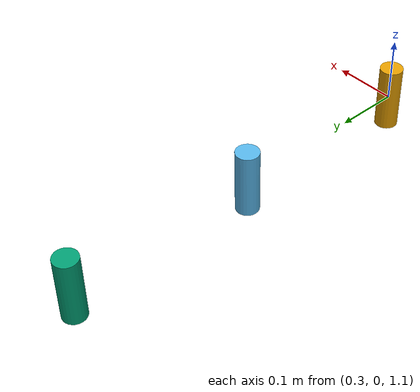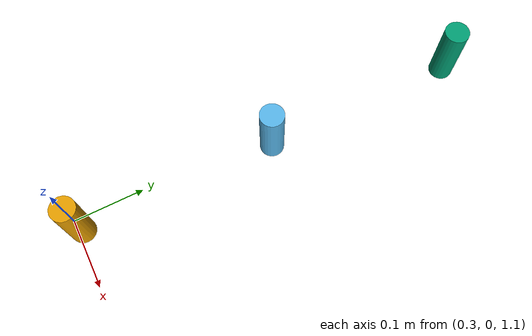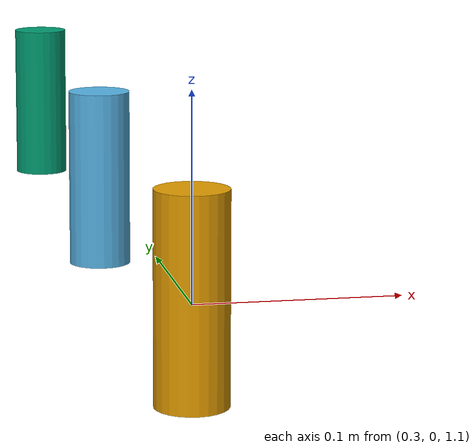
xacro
<?xml version="1.0"?>
<robot name="lab" xmlns:xacro="http://www.ros.org/wiki/xacro">

  <xacro:property name="base_height" value="1.0"/>
  <xacro:property name="tube_height" value="0.1030"/>
  <xacro:property name="x_tube" value="0.3"/>
  <xacro:property name="y_tube1" value="0"/>
  <xacro:property name="y_tube2" value="0.3"/>
  <xacro:property name="y_tube3" value="0.6"/>

  <!-- Include Yumi with table -->

  <!-- Include test tubes -->
  <xacro:include filename="$(find YumiProjectThesis)/urdf/test_tube/test_tube.urdf.xacro"/>
  <xacro:test_tube_urdf prefix="test_tube_1_"/>
  <xacro:test_tube_urdf prefix="test_tube_2_"/>
  <xacro:test_tube_urdf prefix="test_tube_3_"/>

  <link name="base"/>
  <!-- Joint test_tubes -->
  <joint name="test_tube_1_joint" type="floating">
    <parent link="base"/>
    <child link="test_tube_1_tube_link"/>
    <origin xyz="${x_tube} ${y_tube1} ${(base_height+tube_height)}"/>
  </joint>

  <joint name="test_tube_2_joint" type="floating">
    <parent link="base"/>
    <child link="test_tube_2_tube_link"/>
    <origin xyz="${x_tube} ${y_tube2} ${(base_height + tube_height)}"/>
  </joint>

  <joint name="test_tube_3_joint" type="floating">
    <parent link="base"/>
    <child link="test_tube_3_tube_link"/>
    <origin xyz="${x_tube} ${y_tube3} ${(base_height + tube_height)}"/>
  </joint>

</robot>

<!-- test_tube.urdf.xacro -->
<robot xmlns:xacro="http://www.ros.org/wiki/xacro">
  <xacro:macro name="test_tube_urdf" params="prefix">
    <link name="${prefix}tube_link">
      <visual name="tube_visual">
        <origin xyz="0 0 0" rpy="0 0 0"/>
        <geometry>
          <cylinder radius="0.0180" length="0.1030"/>
        </geometry>
      </visual>
      <collision name="tube_collision">
        <origin xyz="0 0 0" rpy="0 0 0"/>
        <geometry>
          <cylinder radius="0.0180" length="0.1030"/>
        </geometry>
      </collision>
      <inertial>
        <mass value="0.050"/>
        <origin xyz="0 0 0" rpy="0 0 0"/>
        <!--Inertia: I=1/12 mL^2 -->
        <inertia ixx="0.000044204" iyy="0.000044204" izz="0"
          ixy="0" ixz="0" iyz="0"/>
      </inertial>
    </link>
  </xacro:macro>
</robot>
